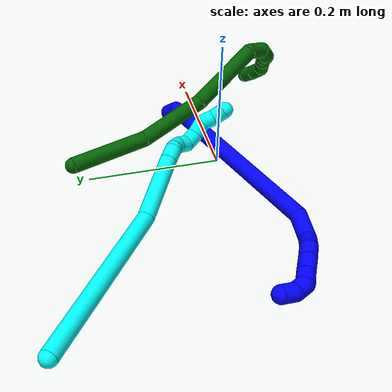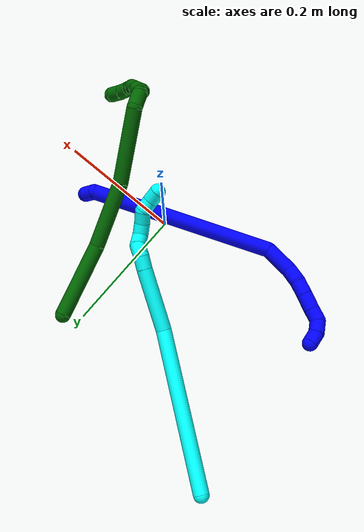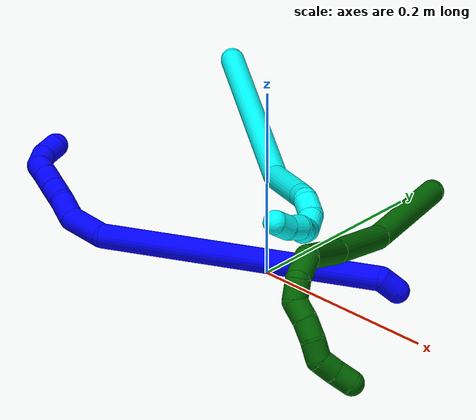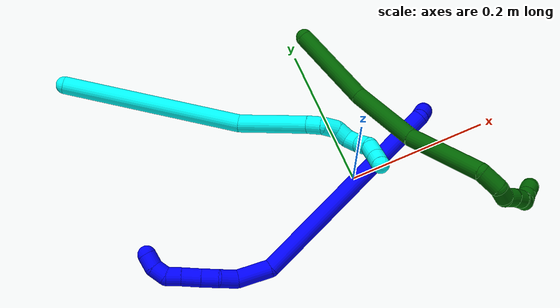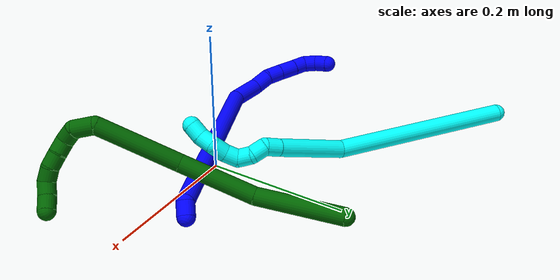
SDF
<sdf version="1.7">
 <world name="default">
  <model name="1">
   <static>0</static>
   <link name="1">
    <collision name="collision-cylinder-e_1_1_4">
     <pose>0.004411 -0.001394 0.00906 0.152712 0.448473 0.034894</pose>
     <geometry><cylinder><radius>0.0125</radius><length>0.020346</length></cylinder></geometry>
     <surface>
      <friction><ode><mu>1.16</mu><mu2>1.16</mu2><slip1>0</slip1><slip2>0</slip2></ode></friction>
      <contact><ode><kp>1e+06</kp><kd>1</kd><max_vel>0</max_vel><min_depth>0.001</min_depth></ode></contact>
     </surface>
    </collision>
    <visual name="visual-cylinder-e_1_1_4">
     <pose>0.004411 -0.001394 0.00906 0.152712 0.448473 0.034894</pose>
     <geometry><cylinder><radius>0.0125</radius><length>0.020346</length></cylinder></geometry>
     <material><ambient>0 0 1 1</ambient></material>
    </visual>
    <collision name="collision-cylinder-e_2_4_5">
     <pose>-0.038287 -0.026449 0.15689 0.168875 -0.322934 -0.027571</pose>
     <geometry><cylinder><radius>0.0125</radius><length>0.296891</length></cylinder></geometry>
     <surface>
      <friction><ode><mu>1.16</mu><mu2>1.16</mu2><slip1>0</slip1><slip2>0</slip2></ode></friction>
      <contact><ode><kp>1e+06</kp><kd>1</kd><max_vel>0</max_vel><min_depth>0.001</min_depth></ode></contact>
     </surface>
    </collision>
    <visual name="visual-cylinder-e_2_4_5">
     <pose>-0.038287 -0.026449 0.15689 0.168875 -0.322934 -0.027571</pose>
     <geometry><cylinder><radius>0.0125</radius><length>0.296891</length></cylinder></geometry>
     <material><ambient>0 0 1 1</ambient></material>
    </visual>
    <collision name="collision-cylinder-e_3_5_6">
     <pose>-0.094784 -0.042932 0.316117 -0.337427 -0.408647 0.070562</pose>
     <geometry><cylinder><radius>0.0125</radius><length>0.047249</length></cylinder></geometry>
     <surface>
      <friction><ode><mu>1.16</mu><mu2>1.16</mu2><slip1>0</slip1><slip2>0</slip2></ode></friction>
      <contact><ode><kp>1e+06</kp><kd>1</kd><max_vel>0</max_vel><min_depth>0.001</min_depth></ode></contact>
     </surface>
    </collision>
    <visual name="visual-cylinder-e_3_5_6">
     <pose>-0.094784 -0.042932 0.316117 -0.337427 -0.408647 0.070562</pose>
     <geometry><cylinder><radius>0.0125</radius><length>0.047249</length></cylinder></geometry>
     <material><ambient>0 0 1 1</ambient></material>
    </visual>
    <collision name="collision-cylinder-e_4_6_7">
     <pose>-0.105033 -0.028008 0.346837 -0.646582 -0.066868 0.022411</pose>
     <geometry><cylinder><radius>0.0125</radius><length>0.025776</length></cylinder></geometry>
     <surface>
      <friction><ode><mu>1.16</mu><mu2>1.16</mu2><slip1>0</slip1><slip2>0</slip2></ode></friction>
      <contact><ode><kp>1e+06</kp><kd>1</kd><max_vel>0</max_vel><min_depth>0.001</min_depth></ode></contact>
     </surface>
    </collision>
    <visual name="visual-cylinder-e_4_6_7">
     <pose>-0.105033 -0.028008 0.346837 -0.646582 -0.066868 0.022411</pose>
     <geometry><cylinder><radius>0.0125</radius><length>0.025776</length></cylinder></geometry>
     <material><ambient>0 0 1 1</ambient></material>
    </visual>
    <collision name="collision-cylinder-e_5_7_8">
     <pose>-0.110066 -0.013158 0.365295 -0.714117 -0.367259 0.138345</pose>
     <geometry><cylinder><radius>0.0125</radius><length>0.023239</length></cylinder></geometry>
     <surface>
      <friction><ode><mu>1.16</mu><mu2>1.16</mu2><slip1>0</slip1><slip2>0</slip2></ode></friction>
      <contact><ode><kp>1e+06</kp><kd>1</kd><max_vel>0</max_vel><min_depth>0.001</min_depth></ode></contact>
     </surface>
    </collision>
    <visual name="visual-cylinder-e_5_7_8">
     <pose>-0.110066 -0.013158 0.365295 -0.714117 -0.367259 0.138345</pose>
     <geometry><cylinder><radius>0.0125</radius><length>0.023239</length></cylinder></geometry>
     <material><ambient>0 0 1 1</ambient></material>
    </visual>
    <collision name="collision-cylinder-e_6_8_9">
     <pose>-0.119141 0.002136 0.382437 -0.741313 -0.384123 0.150854</pose>
     <geometry><cylinder><radius>0.0125</radius><length>0.026168</length></cylinder></geometry>
     <surface>
      <friction><ode><mu>1.16</mu><mu2>1.16</mu2><slip1>0</slip1><slip2>0</slip2></ode></friction>
      <contact><ode><kp>1e+06</kp><kd>1</kd><max_vel>0</max_vel><min_depth>0.001</min_depth></ode></contact>
     </surface>
    </collision>
    <visual name="visual-cylinder-e_6_8_9">
     <pose>-0.119141 0.002136 0.382437 -0.741313 -0.384123 0.150854</pose>
     <geometry><cylinder><radius>0.0125</radius><length>0.026168</length></cylinder></geometry>
     <material><ambient>0 0 1 1</ambient></material>
    </visual>
    <collision name="collision-cylinder-e_7_9_10">
     <pose>-0.12785 0.016329 0.398599 -0.693894 -0.385224 0.140802</pose>
     <geometry><cylinder><radius>0.0125</radius><length>0.020252</length></cylinder></geometry>
     <surface>
      <friction><ode><mu>1.16</mu><mu2>1.16</mu2><slip1>0</slip1><slip2>0</slip2></ode></friction>
      <contact><ode><kp>1e+06</kp><kd>1</kd><max_vel>0</max_vel><min_depth>0.001</min_depth></ode></contact>
     </surface>
    </collision>
    <visual name="visual-cylinder-e_7_9_10">
     <pose>-0.12785 0.016329 0.398599 -0.693894 -0.385224 0.140802</pose>
     <geometry><cylinder><radius>0.0125</radius><length>0.020252</length></cylinder></geometry>
     <material><ambient>0 0 1 1</ambient></material>
    </visual>
    <collision name="collision-cylinder-e_8_10_11">
     <pose>-0.134519 0.03164 0.408137 -1.32613 -0.290079 0.22718</pose>
     <geometry><cylinder><radius>0.0125</radius><length>0.020028</length></cylinder></geometry>
     <surface>
      <friction><ode><mu>1.16</mu><mu2>1.16</mu2><slip1>0</slip1><slip2>0</slip2></ode></friction>
      <contact><ode><kp>1e+06</kp><kd>1</kd><max_vel>0</max_vel><min_depth>0.001</min_depth></ode></contact>
     </surface>
    </collision>
    <visual name="visual-cylinder-e_8_10_11">
     <pose>-0.134519 0.03164 0.408137 -1.32613 -0.290079 0.22718</pose>
     <geometry><cylinder><radius>0.0125</radius><length>0.020028</length></cylinder></geometry>
     <material><ambient>0 0 1 1</ambient></material>
    </visual>
    <collision name="collision-cylinder-e_9_11_2">
     <pose>-0.138411 0.050806 0.408938 -1.72416 -0.1027 0.119756</pose>
     <geometry><cylinder><radius>0.0125</radius><length>0.020051</length></cylinder></geometry>
     <surface>
      <friction><ode><mu>1.16</mu><mu2>1.16</mu2><slip1>0</slip1><slip2>0</slip2></ode></friction>
      <contact><ode><kp>1e+06</kp><kd>1</kd><max_vel>0</max_vel><min_depth>0.001</min_depth></ode></contact>
     </surface>
    </collision>
    <visual name="visual-cylinder-e_9_11_2">
     <pose>-0.138411 0.050806 0.408938 -1.72416 -0.1027 0.119756</pose>
     <geometry><cylinder><radius>0.0125</radius><length>0.020051</length></cylinder></geometry>
     <material><ambient>0 0 1 1</ambient></material>
    </visual>
    <collision name="collision-sphere-2">
     <pose>-0.139439 0.060661 0.407415 0 -0 0</pose>
     <geometry><sphere><radius>0.0125</radius></sphere></geometry>
     <surface>
      <friction><ode><mu>1.16</mu><mu2>1.16</mu2><slip1>0</slip1><slip2>0</slip2></ode></friction>
      <contact><ode><kp>1e+06</kp><kd>1</kd><max_vel>0</max_vel><min_depth>0.001</min_depth></ode></contact>
     </surface>
    </collision>
    <visual name="visual-sphere-2">
     <pose>-0.139439 0.060661 0.407415 0 -0 0</pose>
     <geometry><sphere><radius>0.0125</radius></sphere></geometry>
     <material><ambient>0 0 1 1</ambient></material>
    </visual>
    <collision name="collision-sphere-11">
     <pose>-0.137383 0.04095 0.410462 0 -0 0</pose>
     <geometry><sphere><radius>0.0125</radius></sphere></geometry>
     <surface>
      <friction><ode><mu>1.16</mu><mu2>1.16</mu2><slip1>0</slip1><slip2>0</slip2></ode></friction>
      <contact><ode><kp>1e+06</kp><kd>1</kd><max_vel>0</max_vel><min_depth>0.001</min_depth></ode></contact>
     </surface>
    </collision>
    <visual name="visual-sphere-11">
     <pose>-0.137383 0.04095 0.410462 0 -0 0</pose>
     <geometry><sphere><radius>0.0125</radius></sphere></geometry>
     <material><ambient>0 0 1 1</ambient></material>
    </visual>
    <collision name="collision-sphere-10">
     <pose>-0.131655 0.02233 0.405813 0 -0 0</pose>
     <geometry><sphere><radius>0.0125</radius></sphere></geometry>
     <surface>
      <friction><ode><mu>1.16</mu><mu2>1.16</mu2><slip1>0</slip1><slip2>0</slip2></ode></friction>
      <contact><ode><kp>1e+06</kp><kd>1</kd><max_vel>0</max_vel><min_depth>0.001</min_depth></ode></contact>
     </surface>
    </collision>
    <visual name="visual-sphere-10">
     <pose>-0.131655 0.02233 0.405813 0 -0 0</pose>
     <geometry><sphere><radius>0.0125</radius></sphere></geometry>
     <material><ambient>0 0 1 1</ambient></material>
    </visual>
    <collision name="collision-sphere-9">
     <pose>-0.124045 0.010327 0.391385 0 -0 0</pose>
     <geometry><sphere><radius>0.0125</radius></sphere></geometry>
     <surface>
      <friction><ode><mu>1.16</mu><mu2>1.16</mu2><slip1>0</slip1><slip2>0</slip2></ode></friction>
      <contact><ode><kp>1e+06</kp><kd>1</kd><max_vel>0</max_vel><min_depth>0.001</min_depth></ode></contact>
     </surface>
    </collision>
    <visual name="visual-sphere-9">
     <pose>-0.124045 0.010327 0.391385 0 -0 0</pose>
     <geometry><sphere><radius>0.0125</radius></sphere></geometry>
     <material><ambient>0 0 1 1</ambient></material>
    </visual>
    <collision name="collision-sphere-4">
     <pose>0.008822 -0.002789 0.018121 0 -0 0</pose>
     <geometry><sphere><radius>0.0125</radius></sphere></geometry>
     <surface>
      <friction><ode><mu>1.16</mu><mu2>1.16</mu2><slip1>0</slip1><slip2>0</slip2></ode></friction>
      <contact><ode><kp>1e+06</kp><kd>1</kd><max_vel>0</max_vel><min_depth>0.001</min_depth></ode></contact>
     </surface>
    </collision>
    <visual name="visual-sphere-4">
     <pose>0.008822 -0.002789 0.018121 0 -0 0</pose>
     <geometry><sphere><radius>0.0125</radius></sphere></geometry>
     <material><ambient>0 0 1 1</ambient></material>
    </visual>
    <collision name="collision-sphere-1">
     <geometry><sphere><radius>0.0125</radius></sphere></geometry>
     <surface>
      <friction><ode><mu>1.16</mu><mu2>1.16</mu2><slip1>0</slip1><slip2>0</slip2></ode></friction>
      <contact><ode><kp>1e+06</kp><kd>1</kd><max_vel>0</max_vel><min_depth>0.001</min_depth></ode></contact>
     </surface>
    </collision>
    <visual name="visual-sphere-1">
     <geometry><sphere><radius>0.0125</radius></sphere></geometry>
     <material><ambient>0 0 1 1</ambient></material>
    </visual>
    <collision name="collision-sphere-8">
     <pose>-0.114238 -0.006055 0.37349 0 -0 0</pose>
     <geometry><sphere><radius>0.0125</radius></sphere></geometry>
     <surface>
      <friction><ode><mu>1.16</mu><mu2>1.16</mu2><slip1>0</slip1><slip2>0</slip2></ode></friction>
      <contact><ode><kp>1e+06</kp><kd>1</kd><max_vel>0</max_vel><min_depth>0.001</min_depth></ode></contact>
     </surface>
    </collision>
    <visual name="visual-sphere-8">
     <pose>-0.114238 -0.006055 0.37349 0 -0 0</pose>
     <geometry><sphere><radius>0.0125</radius></sphere></geometry>
     <material><ambient>0 0 1 1</ambient></material>
    </visual>
    <collision name="collision-sphere-5">
     <pose>-0.085397 -0.050109 0.29566 0 -0 0</pose>
     <geometry><sphere><radius>0.0125</radius></sphere></geometry>
     <surface>
      <friction><ode><mu>1.16</mu><mu2>1.16</mu2><slip1>0</slip1><slip2>0</slip2></ode></friction>
      <contact><ode><kp>1e+06</kp><kd>1</kd><max_vel>0</max_vel><min_depth>0.001</min_depth></ode></contact>
     </surface>
    </collision>
    <visual name="visual-sphere-5">
     <pose>-0.085397 -0.050109 0.29566 0 -0 0</pose>
     <geometry><sphere><radius>0.0125</radius></sphere></geometry>
     <material><ambient>0 0 1 1</ambient></material>
    </visual>
    <collision name="collision-sphere-6">
     <pose>-0.104172 -0.035755 0.336573 0 -0 0</pose>
     <geometry><sphere><radius>0.0125</radius></sphere></geometry>
     <surface>
      <friction><ode><mu>1.16</mu><mu2>1.16</mu2><slip1>0</slip1><slip2>0</slip2></ode></friction>
      <contact><ode><kp>1e+06</kp><kd>1</kd><max_vel>0</max_vel><min_depth>0.001</min_depth></ode></contact>
     </surface>
    </collision>
    <visual name="visual-sphere-6">
     <pose>-0.104172 -0.035755 0.336573 0 -0 0</pose>
     <geometry><sphere><radius>0.0125</radius></sphere></geometry>
     <material><ambient>0 0 1 1</ambient></material>
    </visual>
    <collision name="collision-sphere-7">
     <pose>-0.105894 -0.02026 0.3571 0 -0 0</pose>
     <geometry><sphere><radius>0.0125</radius></sphere></geometry>
     <surface>
      <friction><ode><mu>1.16</mu><mu2>1.16</mu2><slip1>0</slip1><slip2>0</slip2></ode></friction>
      <contact><ode><kp>1e+06</kp><kd>1</kd><max_vel>0</max_vel><min_depth>0.001</min_depth></ode></contact>
     </surface>
    </collision>
    <visual name="visual-sphere-7">
     <pose>-0.105894 -0.02026 0.3571 0 -0 0</pose>
     <geometry><sphere><radius>0.0125</radius></sphere></geometry>
     <material><ambient>0 0 1 1</ambient></material>
    </visual>
    <inertial>
     <pose>-0.064395 -0.017796 0.227166 0 -0 0</pose>
     <mass>0.5</mass>
     <inertia>
      <ixx>0.002034</ixx>
      <ixy>0</ixy>
      <ixz>0</ixz>
      <iyy>0.002131</iyy>
      <iyz>0</iyz>
      <izz>0.001073</izz>
     </inertia>
    </inertial>
   </link>
   <pose>0.13068 0.047196 0.01141 0.749356 -1.13215 -0.471753</pose>
  </model>
  <model name="3">
   <static>0</static>
   <link name="3">
    <collision name="collision-cylinder-e_1_1_4">
     <pose>0.025074 0.003473 -0.125482 -3.11393 0.197147 -2.86362</pose>
     <geometry><cylinder><radius>0.0125</radius><length>0.25602</length></cylinder></geometry>
     <surface>
      <friction><ode><mu>1.16</mu><mu2>1.16</mu2><slip1>0</slip1><slip2>0</slip2></ode></friction>
      <contact><ode><kp>1e+06</kp><kd>1</kd><max_vel>0</max_vel><min_depth>0.001</min_depth></ode></contact>
     </surface>
    </collision>
    <visual name="visual-cylinder-e_1_1_4">
     <pose>0.025074 0.003473 -0.125482 -3.11393 0.197147 -2.86362</pose>
     <geometry><cylinder><radius>0.0125</radius><length>0.25602</length></cylinder></geometry>
     <material><ambient>0.003922 1 0.996078 1</ambient></material>
    </visual>
    <collision name="collision-cylinder-e_2_4_5">
     <pose>0.06195 0.024428 -0.297098 -2.77935 0.234833 -1.14447</pose>
     <geometry><cylinder><radius>0.0125</radius><length>0.101454</length></cylinder></geometry>
     <surface>
      <friction><ode><mu>1.16</mu><mu2>1.16</mu2><slip1>0</slip1><slip2>0</slip2></ode></friction>
      <contact><ode><kp>1e+06</kp><kd>1</kd><max_vel>0</max_vel><min_depth>0.001</min_depth></ode></contact>
     </surface>
    </collision>
    <visual name="visual-cylinder-e_2_4_5">
     <pose>0.06195 0.024428 -0.297098 -2.77935 0.234833 -1.14447</pose>
     <geometry><cylinder><radius>0.0125</radius><length>0.101454</length></cylinder></geometry>
     <material><ambient>0.003922 1 0.996078 1</ambient></material>
    </visual>
    <collision name="collision-cylinder-e_3_5_6">
     <pose>0.076906 0.045389 -0.352854 -2.79482 0.298803 -1.41989</pose>
     <geometry><cylinder><radius>0.0125</radius><length>0.021414</length></cylinder></geometry>
     <surface>
      <friction><ode><mu>1.16</mu><mu2>1.16</mu2><slip1>0</slip1><slip2>0</slip2></ode></friction>
      <contact><ode><kp>1e+06</kp><kd>1</kd><max_vel>0</max_vel><min_depth>0.001</min_depth></ode></contact>
     </surface>
    </collision>
    <visual name="visual-cylinder-e_3_5_6">
     <pose>0.076906 0.045389 -0.352854 -2.79482 0.298803 -1.41989</pose>
     <geometry><cylinder><radius>0.0125</radius><length>0.021414</length></cylinder></geometry>
     <material><ambient>0.003922 1 0.996078 1</ambient></material>
    </visual>
    <collision name="collision-cylinder-e_4_6_7">
     <pose>0.079602 0.046252 -0.372597 2.88873 -0.043522 -0.339165</pose>
     <geometry><cylinder><radius>0.0125</radius><length>0.020924</length></cylinder></geometry>
     <surface>
      <friction><ode><mu>1.16</mu><mu2>1.16</mu2><slip1>0</slip1><slip2>0</slip2></ode></friction>
      <contact><ode><kp>1e+06</kp><kd>1</kd><max_vel>0</max_vel><min_depth>0.001</min_depth></ode></contact>
     </surface>
    </collision>
    <visual name="visual-cylinder-e_4_6_7">
     <pose>0.079602 0.046252 -0.372597 2.88873 -0.043522 -0.339165</pose>
     <geometry><cylinder><radius>0.0125</radius><length>0.020924</length></cylinder></geometry>
     <material><ambient>0.003922 1 0.996078 1</ambient></material>
    </visual>
    <collision name="collision-cylinder-e_5_7_8">
     <pose>0.083335 0.039591 -0.390921 2.68344 0.429324 1.50367</pose>
     <geometry><cylinder><radius>0.0125</radius><length>0.020121</length></cylinder></geometry>
     <surface>
      <friction><ode><mu>1.16</mu><mu2>1.16</mu2><slip1>0</slip1><slip2>0</slip2></ode></friction>
      <contact><ode><kp>1e+06</kp><kd>1</kd><max_vel>0</max_vel><min_depth>0.001</min_depth></ode></contact>
     </surface>
    </collision>
    <visual name="visual-cylinder-e_5_7_8">
     <pose>0.083335 0.039591 -0.390921 2.68344 0.429324 1.50367</pose>
     <geometry><cylinder><radius>0.0125</radius><length>0.020121</length></cylinder></geometry>
     <material><ambient>0.003922 1 0.996078 1</ambient></material>
    </visual>
    <collision name="collision-cylinder-e_6_8_9">
     <pose>0.09406 0.038424 -0.406163 -2.75334 0.710146 -2.16652</pose>
     <geometry><cylinder><radius>0.0125</radius><length>0.020056</length></cylinder></geometry>
     <surface>
      <friction><ode><mu>1.16</mu><mu2>1.16</mu2><slip1>0</slip1><slip2>0</slip2></ode></friction>
      <contact><ode><kp>1e+06</kp><kd>1</kd><max_vel>0</max_vel><min_depth>0.001</min_depth></ode></contact>
     </surface>
    </collision>
    <visual name="visual-cylinder-e_6_8_9">
     <pose>0.09406 0.038424 -0.406163 -2.75334 0.710146 -2.16652</pose>
     <geometry><cylinder><radius>0.0125</radius><length>0.020056</length></cylinder></geometry>
     <material><ambient>0.003922 1 0.996078 1</ambient></material>
    </visual>
    <collision name="collision-cylinder-e_7_9_10">
     <pose>0.106847 0.046437 -0.419086 -2.42427 0.674834 -1.50456</pose>
     <geometry><cylinder><radius>0.0125</radius><length>0.020006</length></cylinder></geometry>
     <surface>
      <friction><ode><mu>1.16</mu><mu2>1.16</mu2><slip1>0</slip1><slip2>0</slip2></ode></friction>
      <contact><ode><kp>1e+06</kp><kd>1</kd><max_vel>0</max_vel><min_depth>0.001</min_depth></ode></contact>
     </surface>
    </collision>
    <visual name="visual-cylinder-e_7_9_10">
     <pose>0.106847 0.046437 -0.419086 -2.42427 0.674834 -1.50456</pose>
     <geometry><cylinder><radius>0.0125</radius><length>0.020006</length></cylinder></geometry>
     <material><ambient>0.003922 1 0.996078 1</ambient></material>
    </visual>
    <collision name="collision-cylinder-e_8_10_11">
     <pose>0.122316 0.052161 -0.428805 -2.98891 1.17264 -2.91229</pose>
     <geometry><cylinder><radius>0.0125</radius><length>0.020003</length></cylinder></geometry>
     <surface>
      <friction><ode><mu>1.16</mu><mu2>1.16</mu2><slip1>0</slip1><slip2>0</slip2></ode></friction>
      <contact><ode><kp>1e+06</kp><kd>1</kd><max_vel>0</max_vel><min_depth>0.001</min_depth></ode></contact>
     </surface>
    </collision>
    <visual name="visual-cylinder-e_8_10_11">
     <pose>0.122316 0.052161 -0.428805 -2.98891 1.17264 -2.91229</pose>
     <geometry><cylinder><radius>0.0125</radius><length>0.020003</length></cylinder></geometry>
     <material><ambient>0.003922 1 0.996078 1</ambient></material>
    </visual>
    <collision name="collision-cylinder-e_9_11_2">
     <pose>0.140875 0.055543 -0.434873 -2.24571 1.20502 -1.92201</pose>
     <geometry><cylinder><radius>0.0125</radius><length>0.020002</length></cylinder></geometry>
     <surface>
      <friction><ode><mu>1.16</mu><mu2>1.16</mu2><slip1>0</slip1><slip2>0</slip2></ode></friction>
      <contact><ode><kp>1e+06</kp><kd>1</kd><max_vel>0</max_vel><min_depth>0.001</min_depth></ode></contact>
     </surface>
    </collision>
    <visual name="visual-cylinder-e_9_11_2">
     <pose>0.140875 0.055543 -0.434873 -2.24571 1.20502 -1.92201</pose>
     <geometry><cylinder><radius>0.0125</radius><length>0.020002</length></cylinder></geometry>
     <material><ambient>0.003922 1 0.996078 1</ambient></material>
    </visual>
    <collision name="collision-sphere-2">
     <pose>0.150215 0.058336 -0.437108 0 -0 0</pose>
     <geometry><sphere><radius>0.0125</radius></sphere></geometry>
     <surface>
      <friction><ode><mu>1.16</mu><mu2>1.16</mu2><slip1>0</slip1><slip2>0</slip2></ode></friction>
      <contact><ode><kp>1e+06</kp><kd>1</kd><max_vel>0</max_vel><min_depth>0.001</min_depth></ode></contact>
     </surface>
    </collision>
    <visual name="visual-sphere-2">
     <pose>0.150215 0.058336 -0.437108 0 -0 0</pose>
     <geometry><sphere><radius>0.0125</radius></sphere></geometry>
     <material><ambient>0.003922 1 0.996078 1</ambient></material>
    </visual>
    <collision name="collision-sphere-11">
     <pose>0.131536 0.052751 -0.432638 0 -0 0</pose>
     <geometry><sphere><radius>0.0125</radius></sphere></geometry>
     <surface>
      <friction><ode><mu>1.16</mu><mu2>1.16</mu2><slip1>0</slip1><slip2>0</slip2></ode></friction>
      <contact><ode><kp>1e+06</kp><kd>1</kd><max_vel>0</max_vel><min_depth>0.001</min_depth></ode></contact>
     </surface>
    </collision>
    <visual name="visual-sphere-11">
     <pose>0.131536 0.052751 -0.432638 0 -0 0</pose>
     <geometry><sphere><radius>0.0125</radius></sphere></geometry>
     <material><ambient>0.003922 1 0.996078 1</ambient></material>
    </visual>
    <collision name="collision-sphere-10">
     <pose>0.113097 0.051571 -0.424972 0 -0 0</pose>
     <geometry><sphere><radius>0.0125</radius></sphere></geometry>
     <surface>
      <friction><ode><mu>1.16</mu><mu2>1.16</mu2><slip1>0</slip1><slip2>0</slip2></ode></friction>
      <contact><ode><kp>1e+06</kp><kd>1</kd><max_vel>0</max_vel><min_depth>0.001</min_depth></ode></contact>
     </surface>
    </collision>
    <visual name="visual-sphere-10">
     <pose>0.113097 0.051571 -0.424972 0 -0 0</pose>
     <geometry><sphere><radius>0.0125</radius></sphere></geometry>
     <material><ambient>0.003922 1 0.996078 1</ambient></material>
    </visual>
    <collision name="collision-sphere-9">
     <pose>0.100598 0.041302 -0.413201 0 -0 0</pose>
     <geometry><sphere><radius>0.0125</radius></sphere></geometry>
     <surface>
      <friction><ode><mu>1.16</mu><mu2>1.16</mu2><slip1>0</slip1><slip2>0</slip2></ode></friction>
      <contact><ode><kp>1e+06</kp><kd>1</kd><max_vel>0</max_vel><min_depth>0.001</min_depth></ode></contact>
     </surface>
    </collision>
    <visual name="visual-sphere-9">
     <pose>0.100598 0.041302 -0.413201 0 -0 0</pose>
     <geometry><sphere><radius>0.0125</radius></sphere></geometry>
     <material><ambient>0.003922 1 0.996078 1</ambient></material>
    </visual>
    <collision name="collision-sphere-4">
     <pose>0.050147 0.006945 -0.250965 0 -0 0</pose>
     <geometry><sphere><radius>0.0125</radius></sphere></geometry>
     <surface>
      <friction><ode><mu>1.16</mu><mu2>1.16</mu2><slip1>0</slip1><slip2>0</slip2></ode></friction>
      <contact><ode><kp>1e+06</kp><kd>1</kd><max_vel>0</max_vel><min_depth>0.001</min_depth></ode></contact>
     </surface>
    </collision>
    <visual name="visual-sphere-4">
     <pose>0.050147 0.006945 -0.250965 0 -0 0</pose>
     <geometry><sphere><radius>0.0125</radius></sphere></geometry>
     <material><ambient>0.003922 1 0.996078 1</ambient></material>
    </visual>
    <collision name="collision-sphere-1">
     <geometry><sphere><radius>0.0125</radius></sphere></geometry>
     <surface>
      <friction><ode><mu>1.16</mu><mu2>1.16</mu2><slip1>0</slip1><slip2>0</slip2></ode></friction>
      <contact><ode><kp>1e+06</kp><kd>1</kd><max_vel>0</max_vel><min_depth>0.001</min_depth></ode></contact>
     </surface>
    </collision>
    <visual name="visual-sphere-1">
     <geometry><sphere><radius>0.0125</radius></sphere></geometry>
     <material><ambient>0.003922 1 0.996078 1</ambient></material>
    </visual>
    <collision name="collision-sphere-8">
     <pose>0.087523 0.035545 -0.399125 0 -0 0</pose>
     <geometry><sphere><radius>0.0125</radius></sphere></geometry>
     <surface>
      <friction><ode><mu>1.16</mu><mu2>1.16</mu2><slip1>0</slip1><slip2>0</slip2></ode></friction>
      <contact><ode><kp>1e+06</kp><kd>1</kd><max_vel>0</max_vel><min_depth>0.001</min_depth></ode></contact>
     </surface>
    </collision>
    <visual name="visual-sphere-8">
     <pose>0.087523 0.035545 -0.399125 0 -0 0</pose>
     <geometry><sphere><radius>0.0125</radius></sphere></geometry>
     <material><ambient>0.003922 1 0.996078 1</ambient></material>
    </visual>
    <collision name="collision-sphere-5">
     <pose>0.073754 0.041911 -0.34323 0 -0 0</pose>
     <geometry><sphere><radius>0.0125</radius></sphere></geometry>
     <surface>
      <friction><ode><mu>1.16</mu><mu2>1.16</mu2><slip1>0</slip1><slip2>0</slip2></ode></friction>
      <contact><ode><kp>1e+06</kp><kd>1</kd><max_vel>0</max_vel><min_depth>0.001</min_depth></ode></contact>
     </surface>
    </collision>
    <visual name="visual-sphere-5">
     <pose>0.073754 0.041911 -0.34323 0 -0 0</pose>
     <geometry><sphere><radius>0.0125</radius></sphere></geometry>
     <material><ambient>0.003922 1 0.996078 1</ambient></material>
    </visual>
    <collision name="collision-sphere-6">
     <pose>0.080057 0.048866 -0.362478 0 -0 0</pose>
     <geometry><sphere><radius>0.0125</radius></sphere></geometry>
     <surface>
      <friction><ode><mu>1.16</mu><mu2>1.16</mu2><slip1>0</slip1><slip2>0</slip2></ode></friction>
      <contact><ode><kp>1e+06</kp><kd>1</kd><max_vel>0</max_vel><min_depth>0.001</min_depth></ode></contact>
     </surface>
    </collision>
    <visual name="visual-sphere-6">
     <pose>0.080057 0.048866 -0.362478 0 -0 0</pose>
     <geometry><sphere><radius>0.0125</radius></sphere></geometry>
     <material><ambient>0.003922 1 0.996078 1</ambient></material>
    </visual>
    <collision name="collision-sphere-7">
     <pose>0.079147 0.043637 -0.382717 0 -0 0</pose>
     <geometry><sphere><radius>0.0125</radius></sphere></geometry>
     <surface>
      <friction><ode><mu>1.16</mu><mu2>1.16</mu2><slip1>0</slip1><slip2>0</slip2></ode></friction>
      <contact><ode><kp>1e+06</kp><kd>1</kd><max_vel>0</max_vel><min_depth>0.001</min_depth></ode></contact>
     </surface>
    </collision>
    <visual name="visual-sphere-7">
     <pose>0.079147 0.043637 -0.382717 0 -0 0</pose>
     <geometry><sphere><radius>0.0125</radius></sphere></geometry>
     <material><ambient>0.003922 1 0.996078 1</ambient></material>
    </visual>
    <inertial>
     <pose>0.053965 0.019915 -0.238583 0 -0 0</pose>
     <mass>0.5</mass>
     <inertia>
      <ixx>-0.001742</ixx>
      <ixy>0</ixy>
      <ixz>0</ixz>
      <iyy>0.000872</iyy>
      <iyz>0</iyz>
      <izz>-0.000408</izz>
     </inertia>
    </inertial>
   </link>
   <pose>-0.319503 0.28813 0.016354 1.43943 -0.393854 -1.98828</pose>
  </model>
  <model name="6">
   <static>0</static>
   <link name="6">
    <collision name="collision-cylinder-e_1_1_4">
     <pose>0.002802 -0.032512 -0.051581 2.57918 0.045929 0.158695</pose>
     <geometry><cylinder><radius>0.0125</radius><length>0.122074</length></cylinder></geometry>
     <surface>
      <friction><ode><mu>1.16</mu><mu2>1.16</mu2><slip1>0</slip1><slip2>0</slip2></ode></friction>
      <contact><ode><kp>1e+06</kp><kd>1</kd><max_vel>0</max_vel><min_depth>0.001</min_depth></ode></contact>
     </surface>
    </collision>
    <visual name="visual-cylinder-e_1_1_4">
     <pose>0.002802 -0.032512 -0.051581 2.57918 0.045929 0.158695</pose>
     <geometry><cylinder><radius>0.0125</radius><length>0.122074</length></cylinder></geometry>
     <material><ambient>0 0.392157 0.003922 1</ambient></material>
    </visual>
    <collision name="collision-cylinder-e_2_4_5">
     <pose>0.010342 -0.104463 -0.139062 2.30926 0.088598 0.199919</pose>
     <geometry><cylinder><radius>0.0125</radius><length>0.107082</length></cylinder></geometry>
     <surface>
      <friction><ode><mu>1.16</mu><mu2>1.16</mu2><slip1>0</slip1><slip2>0</slip2></ode></friction>
      <contact><ode><kp>1e+06</kp><kd>1</kd><max_vel>0</max_vel><min_depth>0.001</min_depth></ode></contact>
     </surface>
    </collision>
    <visual name="visual-cylinder-e_2_4_5">
     <pose>0.010342 -0.104463 -0.139062 2.30926 0.088598 0.199919</pose>
     <geometry><cylinder><radius>0.0125</radius><length>0.107082</length></cylinder></geometry>
     <material><ambient>0 0.392157 0.003922 1</ambient></material>
    </visual>
    <collision name="collision-cylinder-e_3_5_6">
     <pose>0.02907 -0.191245 -0.207912 2.17882 0.237953 0.449934</pose>
     <geometry><cylinder><radius>0.0125</radius><length>0.118709</length></cylinder></geometry>
     <surface>
      <friction><ode><mu>1.16</mu><mu2>1.16</mu2><slip1>0</slip1><slip2>0</slip2></ode></friction>
      <contact><ode><kp>1e+06</kp><kd>1</kd><max_vel>0</max_vel><min_depth>0.001</min_depth></ode></contact>
     </surface>
    </collision>
    <visual name="visual-cylinder-e_3_5_6">
     <pose>0.02907 -0.191245 -0.207912 2.17882 0.237953 0.449934</pose>
     <geometry><cylinder><radius>0.0125</radius><length>0.118709</length></cylinder></geometry>
     <material><ambient>0 0.392157 0.003922 1</ambient></material>
    </visual>
    <collision name="collision-cylinder-e_4_6_7">
     <pose>0.046439 -0.241916 -0.255439 2.91722 0.222235 1.56114</pose>
     <geometry><cylinder><radius>0.0125</radius><length>0.030658</length></cylinder></geometry>
     <surface>
      <friction><ode><mu>1.16</mu><mu2>1.16</mu2><slip1>0</slip1><slip2>0</slip2></ode></friction>
      <contact><ode><kp>1e+06</kp><kd>1</kd><max_vel>0</max_vel><min_depth>0.001</min_depth></ode></contact>
     </surface>
    </collision>
    <visual name="visual-cylinder-e_4_6_7">
     <pose>0.046439 -0.241916 -0.255439 2.91722 0.222235 1.56114</pose>
     <geometry><cylinder><radius>0.0125</radius><length>0.030658</length></cylinder></geometry>
     <material><ambient>0 0.392157 0.003922 1</ambient></material>
    </visual>
    <collision name="collision-cylinder-e_5_7_8">
     <pose>0.05135 -0.2407 -0.279502 -2.69499 0.144657 -0.6177</pose>
     <geometry><cylinder><radius>0.0125</radius><length>0.021256</length></cylinder></geometry>
     <surface>
      <friction><ode><mu>1.16</mu><mu2>1.16</mu2><slip1>0</slip1><slip2>0</slip2></ode></friction>
      <contact><ode><kp>1e+06</kp><kd>1</kd><max_vel>0</max_vel><min_depth>0.001</min_depth></ode></contact>
     </surface>
    </collision>
    <visual name="visual-cylinder-e_5_7_8">
     <pose>0.05135 -0.2407 -0.279502 -2.69499 0.144657 -0.6177</pose>
     <geometry><cylinder><radius>0.0125</radius><length>0.021256</length></cylinder></geometry>
     <material><ambient>0 0.392157 0.003922 1</ambient></material>
    </visual>
    <collision name="collision-cylinder-e_6_8_9">
     <pose>0.059872 -0.231402 -0.294454 -2.42555 0.767419 -1.64681</pose>
     <geometry><cylinder><radius>0.0125</radius><length>0.020137</length></cylinder></geometry>
     <surface>
      <friction><ode><mu>1.16</mu><mu2>1.16</mu2><slip1>0</slip1><slip2>0</slip2></ode></friction>
      <contact><ode><kp>1e+06</kp><kd>1</kd><max_vel>0</max_vel><min_depth>0.001</min_depth></ode></contact>
     </surface>
    </collision>
    <visual name="visual-cylinder-e_6_8_9">
     <pose>0.059872 -0.231402 -0.294454 -2.42555 0.767419 -1.64681</pose>
     <geometry><cylinder><radius>0.0125</radius><length>0.020137</length></cylinder></geometry>
     <material><ambient>0 0.392157 0.003922 1</ambient></material>
    </visual>
    <collision name="collision-cylinder-e_7_9_10">
     <pose>0.07262 -0.221384 -0.306186 -2.4431 0.613187 -1.43118</pose>
     <geometry><cylinder><radius>0.0125</radius><length>0.020009</length></cylinder></geometry>
     <surface>
      <friction><ode><mu>1.16</mu><mu2>1.16</mu2><slip1>0</slip1><slip2>0</slip2></ode></friction>
      <contact><ode><kp>1e+06</kp><kd>1</kd><max_vel>0</max_vel><min_depth>0.001</min_depth></ode></contact>
     </surface>
    </collision>
    <visual name="visual-cylinder-e_7_9_10">
     <pose>0.07262 -0.221384 -0.306186 -2.4431 0.613187 -1.43118</pose>
     <geometry><cylinder><radius>0.0125</radius><length>0.020009</length></cylinder></geometry>
     <material><ambient>0 0.392157 0.003922 1</ambient></material>
    </visual>
    <collision name="collision-cylinder-e_8_10_11">
     <pose>0.082302 -0.208847 -0.318103 -2.23114 0.402741 -0.790175</pose>
     <geometry><cylinder><radius>0.0125</radius><length>0.020027</length></cylinder></geometry>
     <surface>
      <friction><ode><mu>1.16</mu><mu2>1.16</mu2><slip1>0</slip1><slip2>0</slip2></ode></friction>
      <contact><ode><kp>1e+06</kp><kd>1</kd><max_vel>0</max_vel><min_depth>0.001</min_depth></ode></contact>
     </surface>
    </collision>
    <visual name="visual-cylinder-e_8_10_11">
     <pose>0.082302 -0.208847 -0.318103 -2.23114 0.402741 -0.790175</pose>
     <geometry><cylinder><radius>0.0125</radius><length>0.020027</length></cylinder></geometry>
     <material><ambient>0 0.392157 0.003922 1</ambient></material>
    </visual>
    <collision name="collision-cylinder-e_9_11_12">
     <pose>0.092766 -0.193974 -0.323752 -1.5707 0.710767 -0.710705</pose>
     <geometry><cylinder><radius>0.0125</radius><length>0.020048</length></cylinder></geometry>
     <surface>
      <friction><ode><mu>1.16</mu><mu2>1.16</mu2><slip1>0</slip1><slip2>0</slip2></ode></friction>
      <contact><ode><kp>1e+06</kp><kd>1</kd><max_vel>0</max_vel><min_depth>0.001</min_depth></ode></contact>
     </surface>
    </collision>
    <visual name="visual-cylinder-e_9_11_12">
     <pose>0.092766 -0.193974 -0.323752 -1.5707 0.710767 -0.710705</pose>
     <geometry><cylinder><radius>0.0125</radius><length>0.020048</length></cylinder></geometry>
     <material><ambient>0 0.392157 0.003922 1</ambient></material>
    </visual>
    <collision name="collision-cylinder-e_10_12_2">
     <pose>0.106717 -0.179663 -0.323673 -1.55914 0.834617 -0.82601</pose>
     <geometry><cylinder><radius>0.0125</radius><length>0.020002</length></cylinder></geometry>
     <surface>
      <friction><ode><mu>1.16</mu><mu2>1.16</mu2><slip1>0</slip1><slip2>0</slip2></ode></friction>
      <contact><ode><kp>1e+06</kp><kd>1</kd><max_vel>0</max_vel><min_depth>0.001</min_depth></ode></contact>
     </surface>
    </collision>
    <visual name="visual-cylinder-e_10_12_2">
     <pose>0.106717 -0.179663 -0.323673 -1.55914 0.834617 -0.82601</pose>
     <geometry><cylinder><radius>0.0125</radius><length>0.020002</length></cylinder></geometry>
     <material><ambient>0 0.392157 0.003922 1</ambient></material>
    </visual>
    <collision name="collision-sphere-2">
     <pose>0.114129 -0.172948 -0.323595 0 -0 0</pose>
     <geometry><sphere><radius>0.0125</radius></sphere></geometry>
     <surface>
      <friction><ode><mu>1.16</mu><mu2>1.16</mu2><slip1>0</slip1><slip2>0</slip2></ode></friction>
      <contact><ode><kp>1e+06</kp><kd>1</kd><max_vel>0</max_vel><min_depth>0.001</min_depth></ode></contact>
     </surface>
    </collision>
    <visual name="visual-sphere-2">
     <pose>0.114129 -0.172948 -0.323595 0 -0 0</pose>
     <geometry><sphere><radius>0.0125</radius></sphere></geometry>
     <material><ambient>0 0.392157 0.003922 1</ambient></material>
    </visual>
    <collision name="collision-sphere-12">
     <pose>0.099306 -0.186378 -0.323752 0 -0 0</pose>
     <geometry><sphere><radius>0.0125</radius></sphere></geometry>
     <surface>
      <friction><ode><mu>1.16</mu><mu2>1.16</mu2><slip1>0</slip1><slip2>0</slip2></ode></friction>
      <contact><ode><kp>1e+06</kp><kd>1</kd><max_vel>0</max_vel><min_depth>0.001</min_depth></ode></contact>
     </surface>
    </collision>
    <visual name="visual-sphere-12">
     <pose>0.099306 -0.186378 -0.323752 0 -0 0</pose>
     <geometry><sphere><radius>0.0125</radius></sphere></geometry>
     <material><ambient>0 0.392157 0.003922 1</ambient></material>
    </visual>
    <collision name="collision-sphere-11">
     <pose>0.086227 -0.201571 -0.323753 0 -0 0</pose>
     <geometry><sphere><radius>0.0125</radius></sphere></geometry>
     <surface>
      <friction><ode><mu>1.16</mu><mu2>1.16</mu2><slip1>0</slip1><slip2>0</slip2></ode></friction>
      <contact><ode><kp>1e+06</kp><kd>1</kd><max_vel>0</max_vel><min_depth>0.001</min_depth></ode></contact>
     </surface>
    </collision>
    <visual name="visual-sphere-11">
     <pose>0.086227 -0.201571 -0.323753 0 -0 0</pose>
     <geometry><sphere><radius>0.0125</radius></sphere></geometry>
     <material><ambient>0 0.392157 0.003922 1</ambient></material>
    </visual>
    <collision name="collision-sphere-10">
     <pose>0.078377 -0.216122 -0.312452 0 -0 0</pose>
     <geometry><sphere><radius>0.0125</radius></sphere></geometry>
     <surface>
      <friction><ode><mu>1.16</mu><mu2>1.16</mu2><slip1>0</slip1><slip2>0</slip2></ode></friction>
      <contact><ode><kp>1e+06</kp><kd>1</kd><max_vel>0</max_vel><min_depth>0.001</min_depth></ode></contact>
     </surface>
    </collision>
    <visual name="visual-sphere-10">
     <pose>0.078377 -0.216122 -0.312452 0 -0 0</pose>
     <geometry><sphere><radius>0.0125</radius></sphere></geometry>
     <material><ambient>0 0.392157 0.003922 1</ambient></material>
    </visual>
    <collision name="collision-sphere-9">
     <pose>0.066863 -0.226645 -0.299921 0 -0 0</pose>
     <geometry><sphere><radius>0.0125</radius></sphere></geometry>
     <surface>
      <friction><ode><mu>1.16</mu><mu2>1.16</mu2><slip1>0</slip1><slip2>0</slip2></ode></friction>
      <contact><ode><kp>1e+06</kp><kd>1</kd><max_vel>0</max_vel><min_depth>0.001</min_depth></ode></contact>
     </surface>
    </collision>
    <visual name="visual-sphere-9">
     <pose>0.066863 -0.226645 -0.299921 0 -0 0</pose>
     <geometry><sphere><radius>0.0125</radius></sphere></geometry>
     <material><ambient>0 0.392157 0.003922 1</ambient></material>
    </visual>
    <collision name="collision-sphere-4">
     <pose>0.005605 -0.065024 -0.103162 0 -0 0</pose>
     <geometry><sphere><radius>0.0125</radius></sphere></geometry>
     <surface>
      <friction><ode><mu>1.16</mu><mu2>1.16</mu2><slip1>0</slip1><slip2>0</slip2></ode></friction>
      <contact><ode><kp>1e+06</kp><kd>1</kd><max_vel>0</max_vel><min_depth>0.001</min_depth></ode></contact>
     </surface>
    </collision>
    <visual name="visual-sphere-4">
     <pose>0.005605 -0.065024 -0.103162 0 -0 0</pose>
     <geometry><sphere><radius>0.0125</radius></sphere></geometry>
     <material><ambient>0 0.392157 0.003922 1</ambient></material>
    </visual>
    <collision name="collision-sphere-1">
     <geometry><sphere><radius>0.0125</radius></sphere></geometry>
     <surface>
      <friction><ode><mu>1.16</mu><mu2>1.16</mu2><slip1>0</slip1><slip2>0</slip2></ode></friction>
      <contact><ode><kp>1e+06</kp><kd>1</kd><max_vel>0</max_vel><min_depth>0.001</min_depth></ode></contact>
     </surface>
    </collision>
    <visual name="visual-sphere-1">
     <geometry><sphere><radius>0.0125</radius></sphere></geometry>
     <material><ambient>0 0.392157 0.003922 1</ambient></material>
    </visual>
    <collision name="collision-sphere-8">
     <pose>0.052882 -0.236158 -0.288987 0 -0 0</pose>
     <geometry><sphere><radius>0.0125</radius></sphere></geometry>
     <surface>
      <friction><ode><mu>1.16</mu><mu2>1.16</mu2><slip1>0</slip1><slip2>0</slip2></ode></friction>
      <contact><ode><kp>1e+06</kp><kd>1</kd><max_vel>0</max_vel><min_depth>0.001</min_depth></ode></contact>
     </surface>
    </collision>
    <visual name="visual-sphere-8">
     <pose>0.052882 -0.236158 -0.288987 0 -0 0</pose>
     <geometry><sphere><radius>0.0125</radius></sphere></geometry>
     <material><ambient>0 0.392157 0.003922 1</ambient></material>
    </visual>
    <collision name="collision-sphere-5">
     <pose>0.01508 -0.143901 -0.174962 0 -0 0</pose>
     <geometry><sphere><radius>0.0125</radius></sphere></geometry>
     <surface>
      <friction><ode><mu>1.16</mu><mu2>1.16</mu2><slip1>0</slip1><slip2>0</slip2></ode></friction>
      <contact><ode><kp>1e+06</kp><kd>1</kd><max_vel>0</max_vel><min_depth>0.001</min_depth></ode></contact>
     </surface>
    </collision>
    <visual name="visual-sphere-5">
     <pose>0.01508 -0.143901 -0.174962 0 -0 0</pose>
     <geometry><sphere><radius>0.0125</radius></sphere></geometry>
     <material><ambient>0 0.392157 0.003922 1</ambient></material>
    </visual>
    <collision name="collision-sphere-6">
     <pose>0.043061 -0.238589 -0.240862 0 -0 0</pose>
     <geometry><sphere><radius>0.0125</radius></sphere></geometry>
     <surface>
      <friction><ode><mu>1.16</mu><mu2>1.16</mu2><slip1>0</slip1><slip2>0</slip2></ode></friction>
      <contact><ode><kp>1e+06</kp><kd>1</kd><max_vel>0</max_vel><min_depth>0.001</min_depth></ode></contact>
     </surface>
    </collision>
    <visual name="visual-sphere-6">
     <pose>0.043061 -0.238589 -0.240862 0 -0 0</pose>
     <geometry><sphere><radius>0.0125</radius></sphere></geometry>
     <material><ambient>0 0.392157 0.003922 1</ambient></material>
    </visual>
    <collision name="collision-sphere-7">
     <pose>0.049818 -0.245243 -0.270016 0 -0 0</pose>
     <geometry><sphere><radius>0.0125</radius></sphere></geometry>
     <surface>
      <friction><ode><mu>1.16</mu><mu2>1.16</mu2><slip1>0</slip1><slip2>0</slip2></ode></friction>
      <contact><ode><kp>1e+06</kp><kd>1</kd><max_vel>0</max_vel><min_depth>0.001</min_depth></ode></contact>
     </surface>
    </collision>
    <visual name="visual-sphere-7">
     <pose>0.049818 -0.245243 -0.270016 0 -0 0</pose>
     <geometry><sphere><radius>0.0125</radius></sphere></geometry>
     <material><ambient>0 0.392157 0.003922 1</ambient></material>
    </visual>
    <inertial>
     <pose>0.031434 -0.142289 -0.182064 0 -0 0</pose>
     <mass>0.5</mass>
     <inertia>
      <ixx>0.000502</ixx>
      <ixy>0</ixy>
      <ixz>0</ixz>
      <iyy>-0.000169</iyy>
      <iyz>0</iyz>
      <izz>0.000191</izz>
     </inertia>
    </inertial>
   </link>
   <pose>0.02367 0.220163 0.012249 -1.07073 -0.023054 0.221036</pose>
  </model>
 </world>
</sdf>
